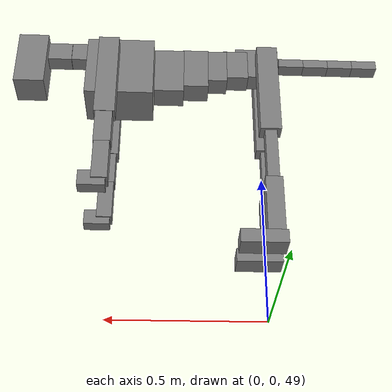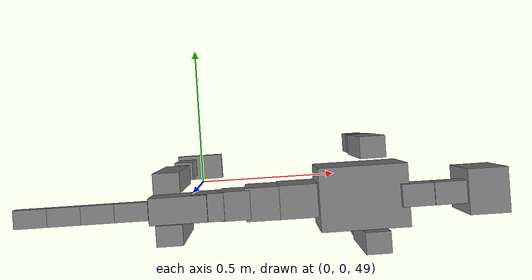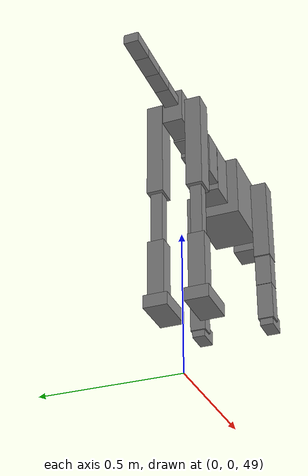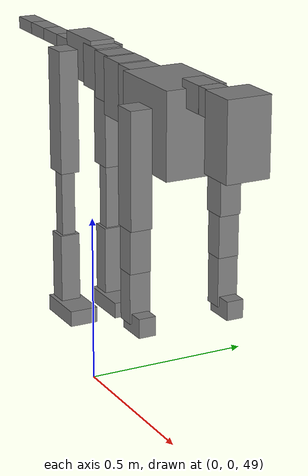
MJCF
<mujoco model="dog">

    <default>
        <joint armature="0.02" stiffness="1" damping="0.2" limited="true"/>
        <geom condim="3" friction="1 0.05 0.05" margin="0.01"/>
        <motor ctrllimited="true" ctrlrange="-1.0 1.0" forcelimited="true" gear="50"/>
    </default>

    <compiler inertiafromgeom="true" angle="radian"/>

    <option timestep="0.016" iterations="50" tolerance="1e-10" solver="Newton" jacobian="dense" cone="pyramidal"/>

    <size nconmax="20000" njmax="60000" nstack="5000000"/>
    <visual>
        <map force="0.1" zfar="30"/>
        <rgba haze="0.15 0.25 0.35 1"/>
        <quality shadowsize="2048"/>
        <global offwidth="800" offheight="800"/>
    </visual>

    <asset>
        <texture type="skybox" builtin="gradient" rgb1="0.3 0.5 0.7" rgb2="0 0 0" width="512" height="512"/>
        <texture name="texplane" type="2d" builtin="checker" rgb1=".2 .3 .4" rgb2=".1 0.15 0.2" width="512" height="512"
                 mark="cross" markrgb=".8 .8 .8"/>
        <texture name="texgeom" type="cube" builtin="flat" mark="cross" width="127" height="1278" rgb1="0.8 0.6 0.4"
                 rgb2="0.8 0.6 0.4" markrgb="1 1 1" random="0.01"/>

        <material name="matplane" reflectance="0.3" texture="texplane" texrepeat="1 1" texuniform="true"/>
        <material name="matgeom" texture="texgeom" texuniform="true" rgba="0.8 0.6 .4 1"/>
    </asset>

    <worldbody>
        <geom name="floor" pos="0 0 0" size="0 0 .25" type="plane" material="matplane" condim="3"/>

        <light directional="false" diffuse=".2 .2 .2" specular="0 0 0" pos="0 0 5" dir="0 0 -1" castshadow="false"/>
        <light mode="targetbodycom" target="torso" directional="false" diffuse=".8 .8 .8" specular="0.3 0.3 0.3"
               pos="0 0 4.0" dir="0 0 -1"/>

        <body name="root" pos="0 0 50">
            <freejoint name="root_1"/>
            <geom type="box" pos="0 0 -0.02" size="0.0774  0.0358  0.063" density="2030"/>

            <body name="spine1" pos="0.054 0 0">
                <joint name="spine1_y" axis="0 1 0" range="0 0.7" limited="true"/>
                <geom type="box" pos="0.02375 0 -0.03" size="0.04375  0.0375  0.05985" density="2030"/>

                <body name="spine2" pos="0.0612 0 0">
                    <joint name="spine2_y" axis="0 1 0" range="-0.15 0.15" limited="true"/>
                    <geom type="box" pos="0.03555  0  -0.04" size="0.04055  0.039  0.06615" density="2030"/>

                    <body name="spine3" pos="0.0730 0 0">
                        <joint name="spine3_y" axis="0 1 0" range="-0.15 0.15" limited="true"/>
                        <geom type="box" pos="0.03555  0  -0.057" size="0.04555  0.0445  0.081" density="2030"/>

                        <body name="spine4" pos="0.0780 0 0">
                            <joint name="spine4_y" axis="0 1 0" range="-0.15 0.15" limited="true"/>
                            <geom type="box" pos="0.05265  0  -0.07" size="0.05265  0.045  0.09135" density="2030"/>

                            <body name="torso" pos="0.1082 0 0">
                                <joint name="torso_y" axis="0 1 0" range="-0.15 0.15" limited="true"/>
                                <geom type="box" pos="0.11925  0  -0.085" size="0.11925  0.085  0.11745"
                                      density="2030"/>

                                <body name="neck1" pos="0.2160  0   0.0180">
                                    <joint name="neck1_y" axis="0 1 0" range="-1.2  -1" limited="true"/>
                                    <geom type="box" pos="0.0423  0  0" size="0.0423  0.03  0.036" density="2325"/>

                                    <body name="neck2" pos="0.0853  0  0">
                                        <joint name="neck2_y" axis="0 1 0" range="0.1  0" limited="true"/>
                                        <geom type="box" pos="0.0423  0  0" size="0.0423  0.03  0.036" density="2325"/>

                                        <body name="head" pos="0.0853  0  0">
                                            <joint name="head_y" axis="0 1 0" range="-0.3  -0.2" limited="true"/>
                                            <geom type="box" pos="0.0531  0  -0.055" size="0.0531  0.06  0.1044"
                                                  density="4030"/>

                                        </body>
                                    </body>
                                </body>

                                <body name="front_shoulder" pos="0.156  0   -0.0480">
                                    <joint name="front_shoulder_y" axis="0 1 0" range="-1 1.5" limited="true"/>
                                    <geom type="box" pos="0 0.13 -0.1315" size="0.0351  0.0300  0.1582" density="1158"/>
                                    <geom type="box" pos="0 -0.13 -0.1315" size="0.0351  0.0300  0.1582"
                                          density="1158"/>

                                    <body name="front_elbow" pos="0  0  -0.2631">
                                        <joint name="front_elbow_y" axis="0 1 0" range="-2 0" limited="true"/>
                                        <geom type="box" pos="0 0.13 -0.0721" size="0.0285  0.0292  0.0721"
                                              density="1081"/>
                                        <geom type="box" pos="0 -0.13 -0.0721" size="0.0285  0.0292  0.0721"
                                              density="1081"/>

                                        <body name="front_wrist" pos="0  0  -0.1441">
                                            <joint name="front_wrist_y" axis="0 1 0" range="-0.2 0" limited="true"/>
                                            <geom type="box" pos="0 0.13 -0.0621" size="0.0262  0.0291  0.0752"
                                                  density="1664"/>
                                            <geom type="box" pos="0 -0.13 -0.0621" size="0.0262  0.0291  0.0752"
                                                  density="1664"/>

                                            <body name="front_finger_end" pos="0  0  -0.1242">
                                                <joint name="front_finger_y" axis="0 1 0" range="-0.4 1"
                                                       limited="true"/>
                                                <geom type="box" pos="0.0241  0.13  -0.0115"
                                                      size="0.0441  0.0241  0.0265" density="1515"/>
                                                <geom type="box" pos="0.0241  -0.13  -0.0115"
                                                      size="0.0441  0.0241  0.0265" density="1515"/>

                                            </body>

                                        </body>
                                    </body>
                                </body>

                            </body>
                        </body>
                    </body>
                </body>
            </body>

            <body name="back_hip" pos="-0.03 0 -0.018">
                <joint name="back_hip_y" axis="0 1 0" range="-1.5 0.3" limited="true"/>
                <geom type="box" pos="0 0.07 -0.1548" size="0.0362  0.0284  0.1776" density="1154"/>
                <geom type="box" pos="0 -0.07 -0.1548" size="0.0362  0.0284  0.1776" density="1154"/>

                <body name="back_knee" pos="0  0  -0.3096">
                    <joint name="back_knee_y" axis="0 1 0" range="0 2.8" limited="true"/>
                    <geom type="box" pos="0 0.07 -0.1109" size="0.0204  0.0201  0.1265" density="1227"/>
                    <geom type="box" pos="0 -0.07 -0.1109" size="0.0204  0.0201  0.1265" density="1227"/>

                    <body name="back_ankle" pos="0  0  -0.2219">
                        <joint name="back_ankle_y" axis="0 1 0" range="-2.2 0" limited="true"/>
                        <geom type="box" pos="0 0.07 -0.1015" size="0.0288  0.0288  0.1128" density="1284"/>
                        <geom type="box" pos="0 -0.07 -0.1015" size="0.0288  0.0288  0.1128" density="1284"/>

                        <body name="back_toe_end" pos="0  0  -0.2031">
                            <joint name="back_toe_y" axis="0 1 0" range="-0.4 1" limited="true"/>
                            <geom type="box" pos="0.0413  0.07  -0.0078" size="0.0758  0.0413  0.0228" density="1515"/>
                            <geom type="box" pos="0.0413  -0.07  -0.0078" size="0.0758  0.0413  0.0228" density="1515"/>

                        </body>
                    </body>
                </body>
            </body>

            <body name="tail1" pos="-0.074 0 -0.006">
                <joint name="tail1_y" axis="0 1 0" range="-0.2 0.2" limited="true"/>
                <geom type="box" pos="-0.0536  0  0" size="0.045  0.025  0.0175" density="1587"/>

                <body name="tail2" pos="-0.09 0 0">
                    <joint name="tail2_y" axis="0 1 0" range="-0.2 0.2" limited="true"/>
                    <geom type="box" pos="-0.0536  0  0" size="0.045  0.025  0.0175" density="1587"/>

                    <body name="tail3" pos="-0.09 0 0">
                        <joint name="tail3_y" axis="0 1 0" range="-0.2 0.2" limited="true"/>
                        <geom type="box" pos="-0.0536  0  0" size="0.045  0.025  0.0175" density="1587"/>

                        <body name="tail4" pos="-0.09 0 0">
                            <joint name="tail4_y" axis="0 1 0" range="-0.2 0.2" limited="true"/>
                            <geom type="box" pos="-0.0536  0  0" size="0.045  0.025  0.0175" density="1587"/>

                        </body>
                    </body>
                </body>
            </body>
        </body>
    </worldbody>

    <actuator>
        <motor joint="spine1_y" forcerange="-150 150     "/>
        <motor joint="spine2_y" forcerange="-150 150     "/>
        <motor joint="spine3_y" forcerange="-150 150     "/>
        <motor joint="spine4_y" forcerange="-150 150     "/>
        <motor joint="torso_y" forcerange="-150 150     "/>
        <motor joint="neck1_y" forcerange="-100 100       "/>
        <motor joint="neck2_y" forcerange="-100 100       "/>
        <motor joint="head_y" forcerange="-150 150       "/>
        <motor joint="front_shoulder_y" forcerange="-119.84 180.35"/>
        <motor joint="front_elbow_y" forcerange="-136.72 175.33"/>
        <motor joint="front_wrist_y" forcerange="-89.22 143.37"/>
        <motor joint="front_finger_y" forcerange="-25.11 63.18"/>
        <motor joint="back_hip_y" forcerange="-258.10 320.59"/>
        <motor joint="back_knee_y" forcerange="-247.43 244.46"/>
        <motor joint="back_angle_y" forcerange="-154.72 205.70"/>
        <motor joint="back_toe_y" forcerange="-139.53 111.19"/>
        <motor joint="tail1_y" forcerange="-50 50     "/>
        <motor joint="tail2_y" forcerange="-50 50     "/>
        <motor joint="tail3_y" forcerange="-50 50     "/>
        <motor joint="tail4_y" forcerange="-50 50     "/>
    </actuator>
</mujoco>
